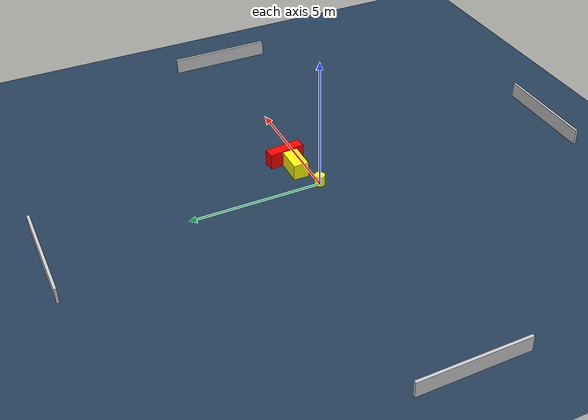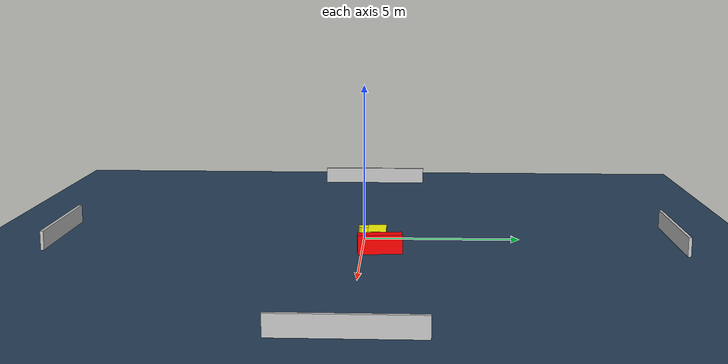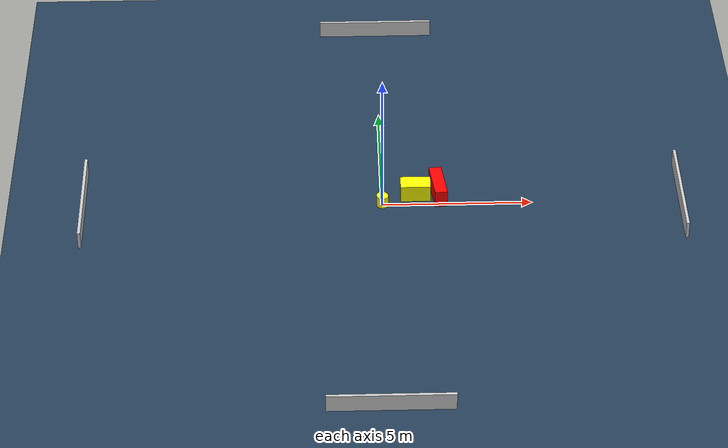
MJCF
<?xml version="1.0" ?>
<mujoco model="generated_environment">
  <option timestep="0.01" integrator="RK4" cone="elliptic"/>
  <default>
    <geom density="1"/>
  </default>
  <asset>
    <texture builtin="gradient" height="3072" name="skybox" rgb1="0.3 0.5 0.7" rgb2="0 0 0" type="skybox" width="512"/>
    <texture builtin="checker" height="300" name="groundplane" rgb1="0.2 0.3 0.4" rgb2="0.1 0.2 0.3" type="2d" width="300"/>
    <material name="groundplane" reflectance="0.2" texrepeat="5 5" texture="groundplane"/>
  </asset>
  <worldbody>
    <light dir="0 0 -1" directional="true" pos="0 0 1.5"/>
    <geom condim="3" friction="0.5 0.005 0.001" material="groundplane" name="floor" pos="0 0 0" size="0 0 0.05" type="plane"/>
    <body name="walls">
      <geom name="wall_1" condim="4" pos="-10.0 0.0 0.3" rgba="0.800000011920929 0.800000011920929 0.800000011920929 1.0" size="0.05 2.0 0.3" type="box"/>
      <geom name="wall_2" condim="4" pos="10.0 0.0 0.3" rgba="0.800000011920929 0.800000011920929 0.800000011920929 1.0" size="0.05 2.0 0.3" type="box"/>
      <geom name="wall_3" condim="4" pos="0.0 -10.0 0.3" rgba="0.800000011920929 0.800000011920929 0.800000011920929 1.0" size="2.0 0.05 0.3" type="box"/>
      <geom name="wall_4" condim="4" pos="0.0 10.0 0.3" rgba="0.800000011920929 0.800000011920929 0.800000011920929 1.0" size="2.0 0.05 0.3" type="box"/>
    </body>
    <body name="robot">
      <joint name="joint_x" type="slide" pos="0 0 0" axis="1 0 0"/>
      <joint name="joint_y" type="slide" pos="0 0 0" axis="0 1 0"/>
      <geom name="robot" type="cylinder" pos="0.0 0.0 0.2" size="0.2 0.2 0.0" mass="5.0" friction="1.0 0.005 0.0001" condim="4" rgba="1.0 1.0 0.0 1.0"/>
    </body>
    <body name="obstacle_1_movable">
      <geom name="obstacle_1_movable" condim="4" pos="1.1181125701721624 0.446820761976492 0.3" euler="0 0 179.61855122509758" friction="0.0 0.005 0.001" rgba="1.0 1.0 0.0 1.0" size="0.5074746035224516 0.2876993530192887 0.3" type="box" mass="0.1"/>
      <joint type="free"/>
    </body>
    <body name="obstacle_2_static">
      <geom name="obstacle_2_static" condim="4" pos="1.8833945988462448 0.5474319032547736 0.3" euler="0 0 6.873139177712537" friction="0.0 0.005 0.001" rgba="1.0 0.0 0.0 1.0" size="0.20850589528152288 0.6891768186424616 0.3" type="box"/>
    </body>
  </worldbody>
  <actuator>
    <motor name="actuator_x" joint="joint_x" gear="1" ctrlrange="-1 1"/>
    <motor name="actuator_y" joint="joint_y" gear="1" ctrlrange="-1 1"/>
  </actuator>
</mujoco>
